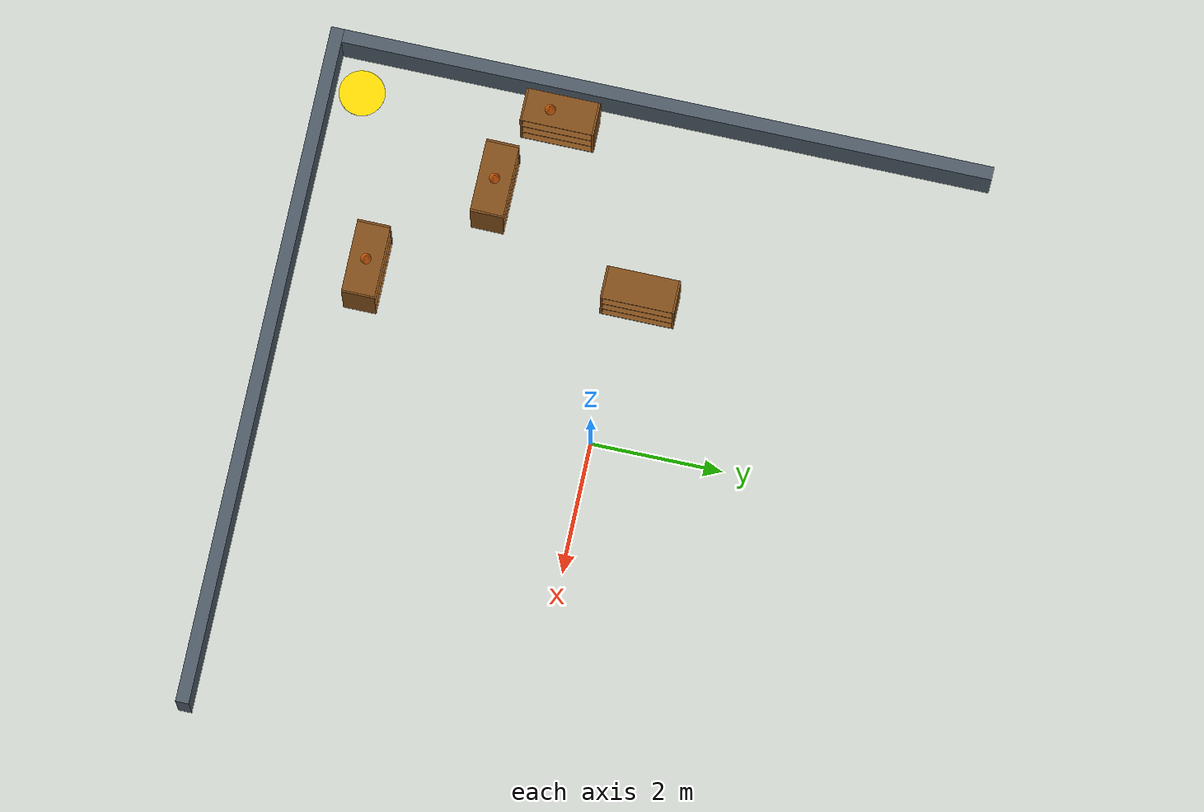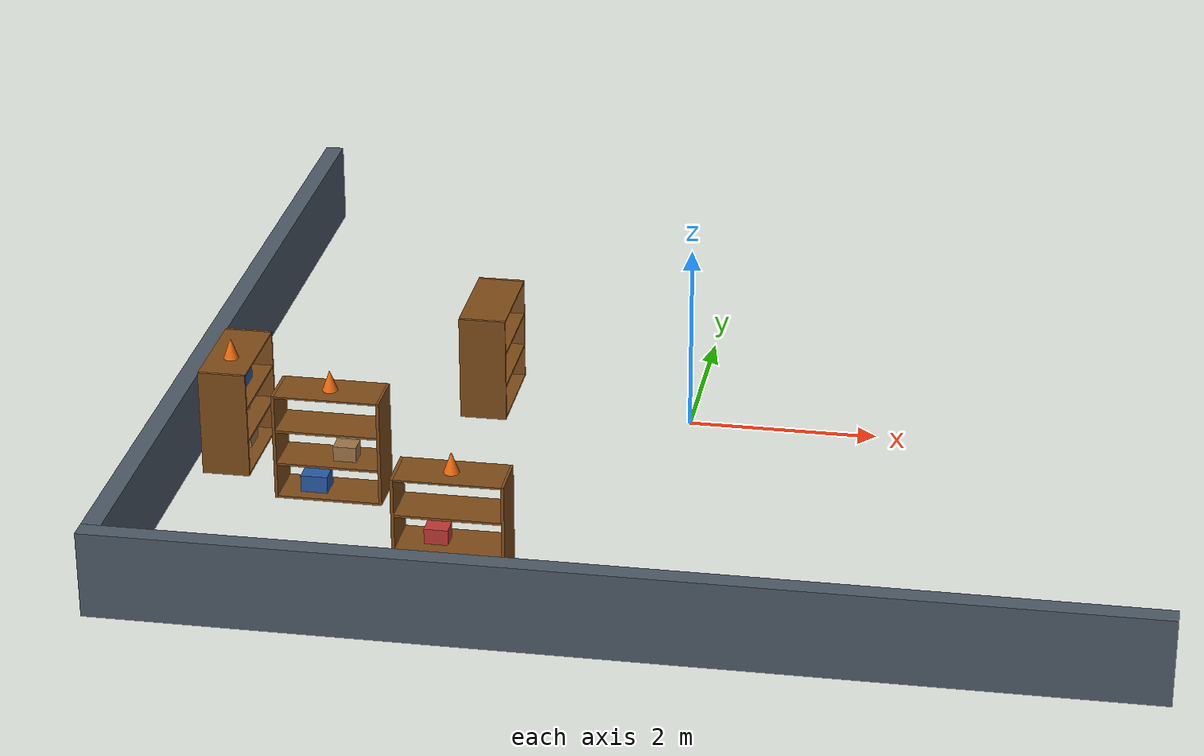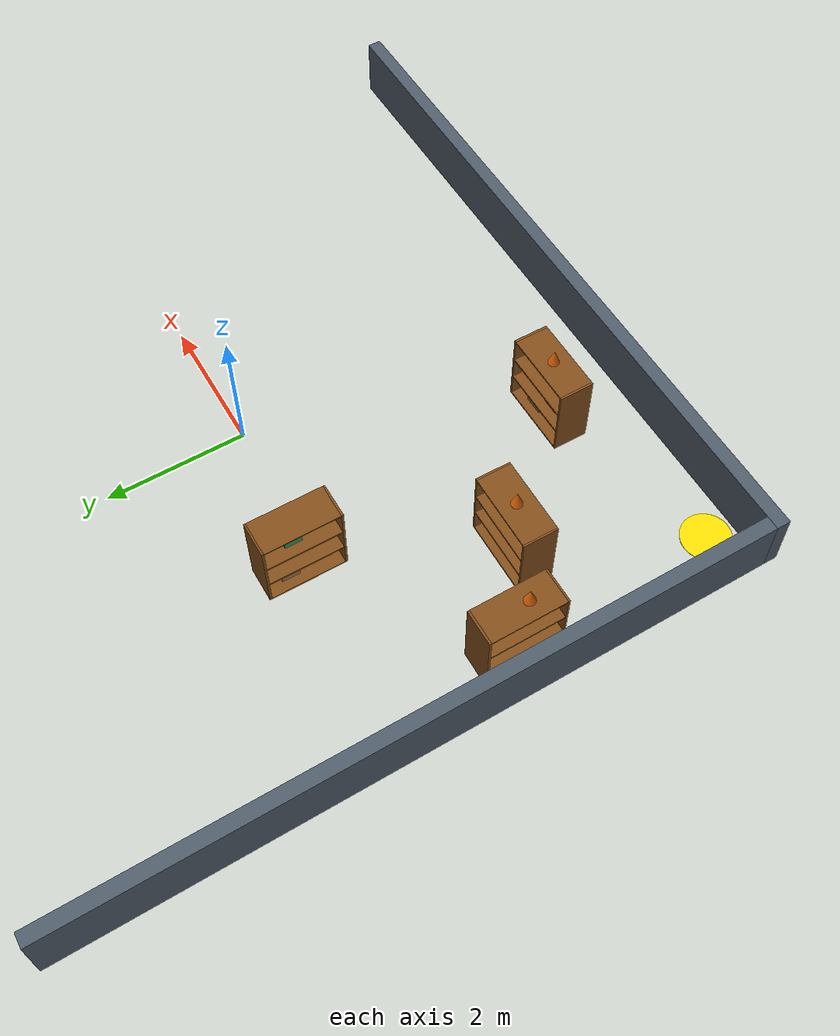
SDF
<sdf version="1.8">
 <world name="large_warehouse">
  <model name="ground_plane">
   <static>true</static>
   <link name="link">
    <collision name="collision">
     <geometry><plane><normal>0 0 1</normal><size>25 25</size></plane></geometry>
    </collision>
   </link>
  </model>
  <model name="wall_south">
   <static>true</static>
   <pose>0 -5.0 0.45 0 0 0</pose>
   <link name="link">
    <collision name="col"><geometry><box><size>10.4 0.2 0.9</size></box></geometry></collision>
    <visual name="vis">
     <geometry><box><size>10.4 0.2 0.9</size></box></geometry>
     <material><ambient>0.3 0.35 0.4 1</ambient><diffuse>0.3 0.35 0.4 1</diffuse></material>
    </visual>
   </link>
  </model>
  <model name="wall_west">
   <static>true</static>
   <pose>-5.1 0.0 0.45 0 0 0</pose>
   <link name="link">
    <collision name="col"><geometry><box><size>0.2 10.0 0.9</size></box></geometry></collision>
    <visual name="vis">
     <geometry><box><size>0.2 10.0 0.9</size></box></geometry>
     <material><ambient>0.3 0.35 0.4 1</ambient><diffuse>0.3 0.35 0.4 1</diffuse></material>
    </visual>
   </link>
  </model>
  <model name="spawn_marker">
   <static>true</static>
   <pose>-4.5 -4.5 0.01 0 0 0</pose>
   <link name="link">
    <visual name="visual">
     <geometry><cylinder><radius>0.35</radius><length>0.01</length></cylinder></geometry>
     <material><ambient>1.0 0.85 0.0 1</ambient><diffuse>1.0 0.85 0.0 1</diffuse></material>
    </visual>
   </link>
  </model>
  <model name="shelf_7">
   <static>true</static>
   <pose>-2.2101 0.2662 0.03 0 0 0.0</pose>
   <link name="link">
    <collision name="col_left">
     <pose>0 0.545 0.575 0 0 0</pose>
     <geometry><box><size>0.50 0.032 1.15</size></box></geometry>
    </collision>
    <visual name="vis_left">
     <pose>0 0.545 0.575 0 0 0</pose>
     <geometry><box><size>0.50 0.032 1.15</size></box></geometry>
     <material><ambient>0.5 0.3 0.1 1</ambient><diffuse>0.5 0.3 0.1 1</diffuse></material>
    </visual>
    <collision name="col_right">
     <pose>0 -0.545 0.575 0 0 0</pose>
     <geometry><box><size>0.50 0.032 1.15</size></box></geometry>
    </collision>
    <visual name="vis_right">
     <pose>0 -0.545 0.575 0 0 0</pose>
     <geometry><box><size>0.50 0.032 1.15</size></box></geometry>
     <material><ambient>0.5 0.3 0.1 1</ambient><diffuse>0.5 0.3 0.1 1</diffuse></material>
    </visual>
    <collision name="col_lower">
     <pose>0 0 0.0125 0 0 0</pose>
     <geometry><box><size>0.50 1.07 0.025</size></box></geometry>
    </collision>
    <visual name="vis_lower">
     <pose>0 0 0.0125 0 0 0</pose>
     <geometry><box><size>0.50 1.07 0.025</size></box></geometry>
     <material><ambient>0.5 0.3 0.1 1</ambient><diffuse>0.5 0.3 0.1 1</diffuse></material>
    </visual>
    <collision name="col_shelf_1">
     <pose>0 0 0.385 0 0 0</pose>
     <geometry><box><size>0.50 1.07 0.025</size></box></geometry>
    </collision>
    <visual name="vis_shelf_1">
     <pose>0 0 0.385 0 0 0</pose>
     <geometry><box><size>0.50 1.07 0.025</size></box></geometry>
     <material><ambient>0.5 0.3 0.1 1</ambient><diffuse>0.5 0.3 0.1 1</diffuse></material>
    </visual>
    <collision name="col_shelf_2">
     <pose>0 0 0.755 0 0 0</pose>
     <geometry><box><size>0.50 1.07 0.025</size></box></geometry>
    </collision>
    <visual name="vis_shelf_2">
     <pose>0 0 0.755 0 0 0</pose>
     <geometry><box><size>0.50 1.07 0.025</size></box></geometry>
     <material><ambient>0.5 0.3 0.1 1</ambient><diffuse>0.5 0.3 0.1 1</diffuse></material>
    </visual>
    <collision name="col_upper">
     <pose>0 0 1.140 0 0 0</pose>
     <geometry><box><size>0.50 1.07 0.020</size></box></geometry>
    </collision>
    <visual name="vis_upper">
     <pose>0 0 1.140 0 0 0</pose>
     <geometry><box><size>0.50 1.07 0.020</size></box></geometry>
     <material><ambient>0.5 0.3 0.1 1</ambient><diffuse>0.5 0.3 0.1 1</diffuse></material>
    </visual>
    <collision name="col_b1">
     <pose>0 0.18 0.11 0 0 0</pose>
     <geometry><box><size>0.22 0.26 0.17</size></box></geometry>
    </collision>
    <visual name="vis_b1">
     <pose>0 0.18 0.11 0 0 0</pose>
     <geometry><box><size>0.22 0.26 0.17</size></box></geometry>
     <material><ambient>0.62 0.46 0.28 1</ambient><diffuse>0.62 0.46 0.28 1</diffuse></material>
    </visual>
    <collision name="col_c1">
     <pose>0 -0.18 0.4975 0 0 0</pose>
     <geometry><cone><radius>0.07</radius><length>0.2</length></cone></geometry>
    </collision>
    <visual name="vis_c1">
     <pose>0 -0.18 0.4975 0 0 0</pose>
     <geometry><cone><radius>0.07</radius><length>0.2</length></cone></geometry>
     <material><ambient>0.95 0.42 0.05 1</ambient><diffuse>0.95 0.42 0.05 1</diffuse></material>
    </visual>
    <collision name="col_b2">
     <pose>0 0.08 0.8525 0 0 0</pose>
     <geometry><box><size>0.2 0.24 0.17</size></box></geometry>
    </collision>
    <visual name="vis_b2">
     <pose>0 0.08 0.8525 0 0 0</pose>
     <geometry><box><size>0.2 0.24 0.17</size></box></geometry>
     <material><ambient>0.2 0.55 0.35 1</ambient><diffuse>0.2 0.55 0.35 1</diffuse></material>
    </visual>
   </link>
  </model>
  <model name="shelf_9">
   <static>true</static>
   <pose>-4.59 -1.47 0.03 0 0 0.0</pose>
   <link name="link">
    <collision name="col_left">
     <pose>0 0.545 0.575 0 0 0</pose>
     <geometry><box><size>0.50 0.032 1.15</size></box></geometry>
    </collision>
    <visual name="vis_left">
     <pose>0 0.545 0.575 0 0 0</pose>
     <geometry><box><size>0.50 0.032 1.15</size></box></geometry>
     <material><ambient>0.5 0.3 0.1 1</ambient><diffuse>0.5 0.3 0.1 1</diffuse></material>
    </visual>
    <collision name="col_right">
     <pose>0 -0.545 0.575 0 0 0</pose>
     <geometry><box><size>0.50 0.032 1.15</size></box></geometry>
    </collision>
    <visual name="vis_right">
     <pose>0 -0.545 0.575 0 0 0</pose>
     <geometry><box><size>0.50 0.032 1.15</size></box></geometry>
     <material><ambient>0.5 0.3 0.1 1</ambient><diffuse>0.5 0.3 0.1 1</diffuse></material>
    </visual>
    <collision name="col_lower">
     <pose>0 0 0.0125 0 0 0</pose>
     <geometry><box><size>0.50 1.07 0.025</size></box></geometry>
    </collision>
    <visual name="vis_lower">
     <pose>0 0 0.0125 0 0 0</pose>
     <geometry><box><size>0.50 1.07 0.025</size></box></geometry>
     <material><ambient>0.5 0.3 0.1 1</ambient><diffuse>0.5 0.3 0.1 1</diffuse></material>
    </visual>
    <collision name="col_shelf_1">
     <pose>0 0 0.385 0 0 0</pose>
     <geometry><box><size>0.50 1.07 0.025</size></box></geometry>
    </collision>
    <visual name="vis_shelf_1">
     <pose>0 0 0.385 0 0 0</pose>
     <geometry><box><size>0.50 1.07 0.025</size></box></geometry>
     <material><ambient>0.5 0.3 0.1 1</ambient><diffuse>0.5 0.3 0.1 1</diffuse></material>
    </visual>
    <collision name="col_shelf_2">
     <pose>0 0 0.755 0 0 0</pose>
     <geometry><box><size>0.50 1.07 0.025</size></box></geometry>
    </collision>
    <visual name="vis_shelf_2">
     <pose>0 0 0.755 0 0 0</pose>
     <geometry><box><size>0.50 1.07 0.025</size></box></geometry>
     <material><ambient>0.5 0.3 0.1 1</ambient><diffuse>0.5 0.3 0.1 1</diffuse></material>
    </visual>
    <collision name="col_upper">
     <pose>0 0 1.140 0 0 0</pose>
     <geometry><box><size>0.50 1.07 0.020</size></box></geometry>
    </collision>
    <visual name="vis_upper">
     <pose>0 0 1.140 0 0 0</pose>
     <geometry><box><size>0.50 1.07 0.020</size></box></geometry>
     <material><ambient>0.5 0.3 0.1 1</ambient><diffuse>0.5 0.3 0.1 1</diffuse></material>
    </visual>
    <collision name="col_b1">
     <pose>0 0.18 0.11 0 0 0</pose>
     <geometry><box><size>0.22 0.28 0.17</size></box></geometry>
    </collision>
    <visual name="vis_b1">
     <pose>0 0.18 0.11 0 0 0</pose>
     <geometry><box><size>0.22 0.28 0.17</size></box></geometry>
     <material><ambient>0.62 0.46 0.28 1</ambient><diffuse>0.62 0.46 0.28 1</diffuse></material>
    </visual>
    <collision name="col_b2">
     <pose>0 -0.2 0.1 0 0 0</pose>
     <geometry><box><size>0.2 0.24 0.15</size></box></geometry>
    </collision>
    <visual name="vis_b2">
     <pose>0 -0.2 0.1 0 0 0</pose>
     <geometry><box><size>0.2 0.24 0.15</size></box></geometry>
     <material><ambient>0.42 0.46 0.5 1</ambient><diffuse>0.42 0.46 0.5 1</diffuse></material>
    </visual>
    <collision name="col_b3">
     <pose>0 -0.15 0.4775 0 0 0</pose>
     <geometry><box><size>0.18 0.24 0.16</size></box></geometry>
    </collision>
    <visual name="vis_b3">
     <pose>0 -0.15 0.4775 0 0 0</pose>
     <geometry><box><size>0.18 0.24 0.16</size></box></geometry>
     <material><ambient>0.75 0.22 0.2 1</ambient><diffuse>0.75 0.22 0.2 1</diffuse></material>
    </visual>
    <collision name="col_c1">
     <pose>0 0.2 0.4975 0 0 0</pose>
     <geometry><cone><radius>0.07</radius><length>0.2</length></cone></geometry>
    </collision>
    <visual name="vis_c1">
     <pose>0 0.2 0.4975 0 0 0</pose>
     <geometry><cone><radius>0.07</radius><length>0.2</length></cone></geometry>
     <material><ambient>0.95 0.42 0.05 1</ambient><diffuse>0.95 0.42 0.05 1</diffuse></material>
    </visual>
    <collision name="col_b4">
     <pose>0 0.08 0.8525 0 0 0</pose>
     <geometry><box><size>0.22 0.26 0.17</size></box></geometry>
    </collision>
    <visual name="vis_b4">
     <pose>0 0.08 0.8525 0 0 0</pose>
     <geometry><box><size>0.22 0.26 0.17</size></box></geometry>
     <material><ambient>0.15 0.35 0.65 1</ambient><diffuse>0.15 0.35 0.65 1</diffuse></material>
    </visual>
    <collision name="col_c2">
     <pose>0 -0.15 1.26 0 0 0</pose>
     <geometry><cone><radius>0.08</radius><length>0.22</length></cone></geometry>
    </collision>
    <visual name="vis_c2">
     <pose>0 -0.15 1.26 0 0 0</pose>
     <geometry><cone><radius>0.08</radius><length>0.22</length></cone></geometry>
     <material><ambient>0.95 0.42 0.05 1</ambient><diffuse>0.95 0.42 0.05 1</diffuse></material>
    </visual>
   </link>
  </model>
  <model name="shelf_11">
   <static>true</static>
   <pose>-3.395 -2.203 0.03 0 0 -1.5776</pose>
   <link name="link">
    <collision name="col_left">
     <pose>0 0.545 0.575 0 0 0</pose>
     <geometry><box><size>0.50 0.032 1.15</size></box></geometry>
    </collision>
    <visual name="vis_left">
     <pose>0 0.545 0.575 0 0 0</pose>
     <geometry><box><size>0.50 0.032 1.15</size></box></geometry>
     <material><ambient>0.5 0.3 0.1 1</ambient><diffuse>0.5 0.3 0.1 1</diffuse></material>
    </visual>
    <collision name="col_right">
     <pose>0 -0.545 0.575 0 0 0</pose>
     <geometry><box><size>0.50 0.032 1.15</size></box></geometry>
    </collision>
    <visual name="vis_right">
     <pose>0 -0.545 0.575 0 0 0</pose>
     <geometry><box><size>0.50 0.032 1.15</size></box></geometry>
     <material><ambient>0.5 0.3 0.1 1</ambient><diffuse>0.5 0.3 0.1 1</diffuse></material>
    </visual>
    <collision name="col_lower">
     <pose>0 0 0.0125 0 0 0</pose>
     <geometry><box><size>0.50 1.07 0.025</size></box></geometry>
    </collision>
    <visual name="vis_lower">
     <pose>0 0 0.0125 0 0 0</pose>
     <geometry><box><size>0.50 1.07 0.025</size></box></geometry>
     <material><ambient>0.5 0.3 0.1 1</ambient><diffuse>0.5 0.3 0.1 1</diffuse></material>
    </visual>
    <collision name="col_shelf_1">
     <pose>0 0 0.385 0 0 0</pose>
     <geometry><box><size>0.50 1.07 0.025</size></box></geometry>
    </collision>
    <visual name="vis_shelf_1">
     <pose>0 0 0.385 0 0 0</pose>
     <geometry><box><size>0.50 1.07 0.025</size></box></geometry>
     <material><ambient>0.5 0.3 0.1 1</ambient><diffuse>0.5 0.3 0.1 1</diffuse></material>
    </visual>
    <collision name="col_shelf_2">
     <pose>0 0 0.755 0 0 0</pose>
     <geometry><box><size>0.50 1.07 0.025</size></box></geometry>
    </collision>
    <visual name="vis_shelf_2">
     <pose>0 0 0.755 0 0 0</pose>
     <geometry><box><size>0.50 1.07 0.025</size></box></geometry>
     <material><ambient>0.5 0.3 0.1 1</ambient><diffuse>0.5 0.3 0.1 1</diffuse></material>
    </visual>
    <collision name="col_upper">
     <pose>0 0 1.140 0 0 0</pose>
     <geometry><box><size>0.50 1.07 0.020</size></box></geometry>
    </collision>
    <visual name="vis_upper">
     <pose>0 0 1.140 0 0 0</pose>
     <geometry><box><size>0.50 1.07 0.020</size></box></geometry>
     <material><ambient>0.5 0.3 0.1 1</ambient><diffuse>0.5 0.3 0.1 1</diffuse></material>
    </visual>
    <collision name="col_b1">
     <pose>0 -0.18 0.115 0 0 0</pose>
     <geometry><box><size>0.24 0.28 0.18</size></box></geometry>
    </collision>
    <visual name="vis_b1">
     <pose>0 -0.18 0.115 0 0 0</pose>
     <geometry><box><size>0.24 0.28 0.18</size></box></geometry>
     <material><ambient>0.15 0.35 0.65 1</ambient><diffuse>0.15 0.35 0.65 1</diffuse></material>
    </visual>
    <collision name="col_b2">
     <pose>0 0.15 0.4775 0 0 0</pose>
     <geometry><box><size>0.2 0.24 0.16</size></box></geometry>
    </collision>
    <visual name="vis_b2">
     <pose>0 0.15 0.4775 0 0 0</pose>
     <geometry><box><size>0.2 0.24 0.16</size></box></geometry>
     <material><ambient>0.62 0.46 0.28 1</ambient><diffuse>0.62 0.46 0.28 1</diffuse></material>
    </visual>
    <collision name="col_c1">
     <pose>0 0 1.26 0 0 0</pose>
     <geometry><cone><radius>0.08</radius><length>0.22</length></cone></geometry>
    </collision>
    <visual name="vis_c1">
     <pose>0 0 1.26 0 0 0</pose>
     <geometry><cone><radius>0.08</radius><length>0.22</length></cone></geometry>
     <material><ambient>0.95 0.42 0.05 1</ambient><diffuse>0.95 0.42 0.05 1</diffuse></material>
    </visual>
   </link>
  </model>
  <model name="shelf_16">
   <static>true</static>
   <pose>-1.80 -3.80 0.03 0 0 1.57</pose>
   <link name="link">
    <collision name="col_left">
     <pose>0 0.545 0.575 0 0 0</pose>
     <geometry><box><size>0.50 0.032 1.15</size></box></geometry>
    </collision>
    <visual name="vis_left">
     <pose>0 0.545 0.575 0 0 0</pose>
     <geometry><box><size>0.50 0.032 1.15</size></box></geometry>
     <material><ambient>0.5 0.3 0.1 1</ambient><diffuse>0.5 0.3 0.1 1</diffuse></material>
    </visual>
    <collision name="col_right">
     <pose>0 -0.545 0.575 0 0 0</pose>
     <geometry><box><size>0.50 0.032 1.15</size></box></geometry>
    </collision>
    <visual name="vis_right">
     <pose>0 -0.545 0.575 0 0 0</pose>
     <geometry><box><size>0.50 0.032 1.15</size></box></geometry>
     <material><ambient>0.5 0.3 0.1 1</ambient><diffuse>0.5 0.3 0.1 1</diffuse></material>
    </visual>
    <collision name="col_lower">
     <pose>0 0 0.0125 0 0 0</pose>
     <geometry><box><size>0.50 1.07 0.025</size></box></geometry>
    </collision>
    <visual name="vis_lower">
     <pose>0 0 0.0125 0 0 0</pose>
     <geometry><box><size>0.50 1.07 0.025</size></box></geometry>
     <material><ambient>0.5 0.3 0.1 1</ambient><diffuse>0.5 0.3 0.1 1</diffuse></material>
    </visual>
    <collision name="col_shelf_1">
     <pose>0 0 0.385 0 0 0</pose>
     <geometry><box><size>0.50 1.07 0.025</size></box></geometry>
    </collision>
    <visual name="vis_shelf_1">
     <pose>0 0 0.385 0 0 0</pose>
     <geometry><box><size>0.50 1.07 0.025</size></box></geometry>
     <material><ambient>0.5 0.3 0.1 1</ambient><diffuse>0.5 0.3 0.1 1</diffuse></material>
    </visual>
    <collision name="col_shelf_2">
     <pose>0 0 0.755 0 0 0</pose>
     <geometry><box><size>0.50 1.07 0.025</size></box></geometry>
    </collision>
    <visual name="vis_shelf_2">
     <pose>0 0 0.755 0 0 0</pose>
     <geometry><box><size>0.50 1.07 0.025</size></box></geometry>
     <material><ambient>0.5 0.3 0.1 1</ambient><diffuse>0.5 0.3 0.1 1</diffuse></material>
    </visual>
    <collision name="col_upper">
     <pose>0 0 1.140 0 0 0</pose>
     <geometry><box><size>0.50 1.07 0.020</size></box></geometry>
    </collision>
    <visual name="vis_upper">
     <pose>0 0 1.140 0 0 0</pose>
     <geometry><box><size>0.50 1.07 0.020</size></box></geometry>
     <material><ambient>0.5 0.3 0.1 1</ambient><diffuse>0.5 0.3 0.1 1</diffuse></material>
    </visual>
    <collision name="col_b1">
     <pose>0 -0.18 0.115 0 0 0</pose>
     <geometry><box><size>0.24 0.28 0.18</size></box></geometry>
    </collision>
    <visual name="vis_b1">
     <pose>0 -0.18 0.115 0 0 0</pose>
     <geometry><box><size>0.24 0.28 0.18</size></box></geometry>
     <material><ambient>0.62 0.46 0.28 1</ambient><diffuse>0.62 0.46 0.28 1</diffuse></material>
    </visual>
    <collision name="col_b2">
     <pose>0 0.15 0.4775 0 0 0</pose>
     <geometry><box><size>0.2 0.24 0.16</size></box></geometry>
    </collision>
    <visual name="vis_b2">
     <pose>0 0.15 0.4775 0 0 0</pose>
     <geometry><box><size>0.2 0.24 0.16</size></box></geometry>
     <material><ambient>0.75 0.22 0.2 1</ambient><diffuse>0.75 0.22 0.2 1</diffuse></material>
    </visual>
    <collision name="col_c1">
     <pose>0 0 1.26 0 0 0</pose>
     <geometry><cone><radius>0.08</radius><length>0.22</length></cone></geometry>
    </collision>
    <visual name="vis_c1">
     <pose>0 0 1.26 0 0 0</pose>
     <geometry><cone><radius>0.08</radius><length>0.22</length></cone></geometry>
     <material><ambient>0.95 0.42 0.05 1</ambient><diffuse>0.95 0.42 0.05 1</diffuse></material>
    </visual>
   </link>
  </model>
 </world>
</sdf>
